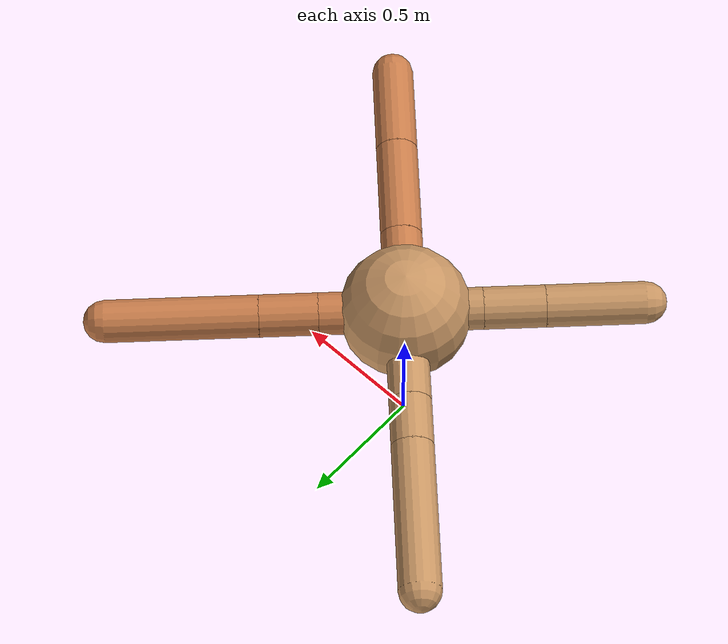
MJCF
<mujoco model="ant">
  <compiler angle="degree" coordinate="local" inertiafromgeom="true" />
  <option integrator="RK4" timestep="0.01" />
  <custom>
    <numeric data="0.0 0.0 0.55 1.0 0.0 0.0 0.0 0.0 1.0 0.0 -1.0 0.0 -1.0 0.0 1.0" name="init_qpos" />
  </custom>
  <default>
    <joint armature="1" damping="1" limited="true" />
    <geom conaffinity="0" condim="3" density="5.0" friction="1.5 0.1 0.1" margin="0.01" rgba="0.8 0.6 0.4 1" />
  </default>
  <worldbody>
    <body name="torso" pos="0 0 0.75">
      <geom name="torso_geom" pos="0 0 0" size="0.25" type="sphere" />

      <body name="front_left_leg" pos="0 0 0">
        <geom fromto="0.0 0.0 0.0 0.2294702031188189 0.2294702031188189 0.0" name="aux_1_geom" size="0.08" type="capsule" rgba=".8 .5 .3 1" />
        <body name="aux_1" pos="0.2294702031188189 0.2294702031188189 0.0">
          <joint axis="0 0 1" name="hip_1" pos="0.0 0.0 0.0" range="-40 40" type="hinge" />
          <geom fromto="0.0 0.0 0.0 0.15704845911150828 0.15704845911150828 0.0" name="left_leg_geom" size="0.08" type="capsule" rgba=".8 .5 .3 1" />
          <body pos="0.15704845911150828 0.15704845911150828 0.0" name="front_left_foot">
            <joint axis="-1 1 0" name="ankle_1" pos="0.0 0.0 0.0" range="30 100" type="hinge" />
            <geom fromto="0.0 0.0 0.0 0.4070843381007217 0.4070843381007217 0.0" name="left_ankle_geom" size="0.08" type="capsule" rgba=".8 .5 .3 1" />
          </body>
        </body>
      </body>
      <body name="front_right_leg" pos="0 0 0">
        <geom fromto="0.0 0.0 0.0 -0.27226348540350864 0.27226348540350864 0.0" name="aux_2_geom" size="0.08" type="capsule" />
        <body name="aux_2" pos="-0.27226348540350864 0.27226348540350864 0.0">
          <joint axis="0 0 1" name="hip_2" pos="0.0 0.0 0.0" range="-40 40" type="hinge" />
          <geom fromto="0.0 0.0 0.0 -0.1302245411946735 0.1302245411946735 0.0" name="right_leg_geom" size="0.08" type="capsule" />
          <body pos="-0.1302245411946735 0.1302245411946735 0.0" name="front_right_foot">
            <joint axis="1 1 0" name="ankle_2" pos="0.0 0.0 0.0" range="-100 -30" type="hinge" />
            <geom fromto="0.0 0.0 0.0 -0.4052543679149442 0.4052543679149442 0.0" name="right_ankle_geom" size="0.08" type="capsule" />
          </body>
        </body>
      </body>
      <body name="left_back_leg" pos="0 0 0">
        <geom fromto="0.0 0.0 0.0 -0.20522948069886937 -0.20522948069886937 0.0" name="aux_3_geom" size="0.08" type="capsule" />
        <body name="aux_3" pos="-0.20522948069886937 -0.20522948069886937 0.0">
          <joint axis="0 0 1" name="hip_3" pos="0.0 0.0 0.0" range="-40 40" type="hinge" />
          <geom fromto="0.0 0.0 0.0 -0.16517369909131888 -0.16517369909131888 0.0" name="back_leg_geom" size="0.08" type="capsule" />
          <body pos="-0.16517369909131888 -0.16517369909131888 0.0" name="left_back_foot">
            <joint axis="-1 1 0" name="ankle_3" pos="0.0 0.0 0.0" range="-100 -30" type="hinge" />
            <geom fromto="0.0 0.0 0.0 -0.26616215891548717 -0.26616215891548717 0.0" name="third_ankle_geom" size="0.08" type="capsule" />
          </body>
        </body>
      </body>
      <body name="right_back_leg" pos="0 0 0">
        <geom fromto="0.0 0.0 0.0 0.23336595554877118 -0.23336595554877118 0.0" name="aux_4_geom" size="0.08" type="capsule" rgba=".8 .5 .3 1" />
        <body name="aux_4" pos="0.23336595554877118 -0.23336595554877118 0.0">
          <joint axis="0 0 1" name="hip_4" pos="0.0 0.0 0.0" range="-40 40" type="hinge" />
          <geom fromto="0.0 0.0 0.0 0.2760482335186974 -0.2760482335186974 0.0" name="rightback_leg_geom" size="0.08" type="capsule" rgba=".8 .5 .3 1" />
          <body pos="0.2760482335186974 -0.2760482335186974 0.0" name="right_back_foot">
            <joint axis="1 1 0" name="ankle_4" pos="0.0 0.0 0.0" range="30 100" type="hinge" />
            <geom fromto="0.0 0.0 0.0 0.253647014796253 -0.253647014796253 0.0" name="fourth_ankle_geom" size="0.08" type="capsule" rgba=".8 .5 .3 1" />
          </body>
        </body>
      </body>
    </body>
  </worldbody>
  <actuator>
    <motor ctrllimited="true" ctrlrange="-1.0 1.0" joint="hip_4" gear="150" />
    <motor ctrllimited="true" ctrlrange="-1.0 1.0" joint="ankle_4" gear="150" />
    <motor ctrllimited="true" ctrlrange="-1.0 1.0" joint="hip_1" gear="150" />
    <motor ctrllimited="true" ctrlrange="-1.0 1.0" joint="ankle_1" gear="150" />
    <motor ctrllimited="true" ctrlrange="-1.0 1.0" joint="hip_2" gear="150" />
    <motor ctrllimited="true" ctrlrange="-1.0 1.0" joint="ankle_2" gear="150" />
    <motor ctrllimited="true" ctrlrange="-1.0 1.0" joint="hip_3" gear="150" />
    <motor ctrllimited="true" ctrlrange="-1.0 1.0" joint="ankle_3" gear="150" />
  </actuator>
</mujoco>
